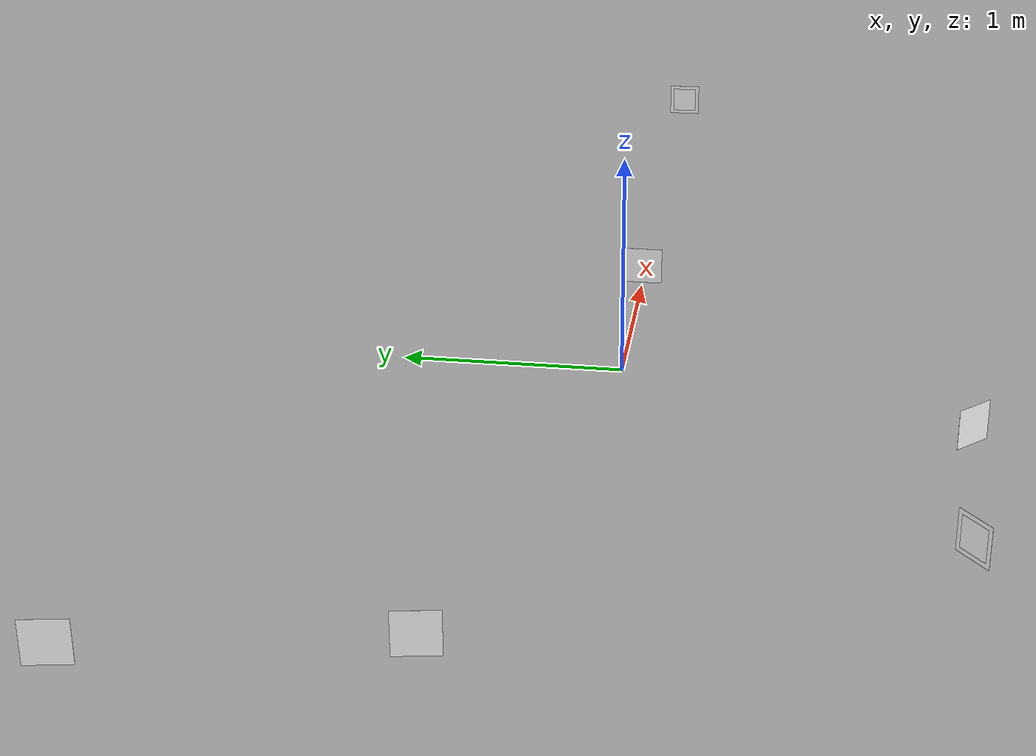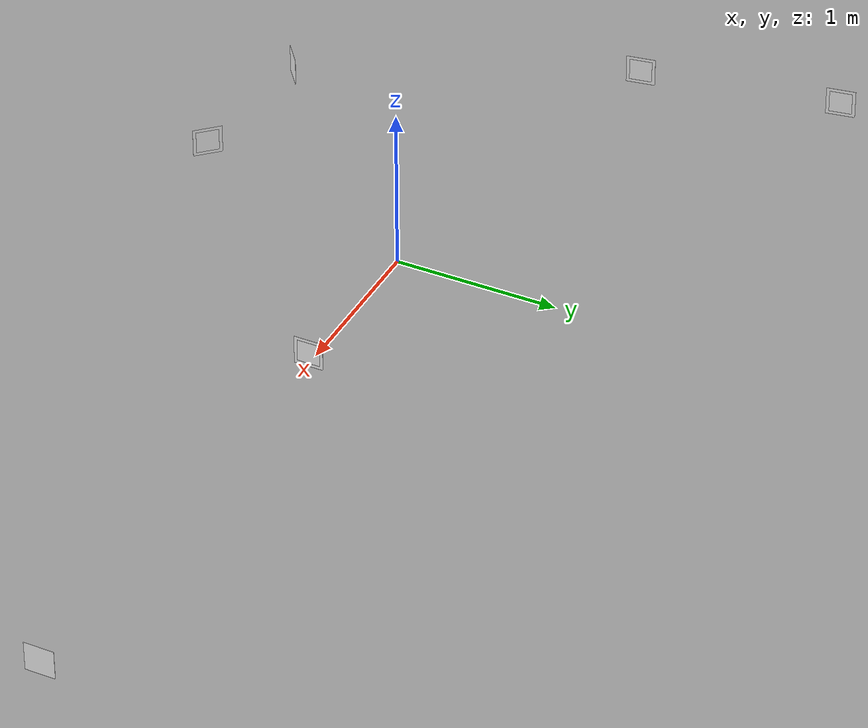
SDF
<sdf version="1.4">
 <world name="default">
  <physics name="1ms" type="ignored">
   <max_step_size>0.001</max_step_size>
   <real_time_factor>1.0</real_time_factor>
  </physics>
  <plugin filename="gz-sim-physics-system" name="gz::sim::systems::Physics"/>
  <plugin filename="gz-sim-user-commands-system" name="gz::sim::systems::UserCommands"/>
  <plugin filename="gz-sim-scene-broadcaster-system" name="gz::sim::systems::SceneBroadcaster"/>
  <plugin filename="gz-sim-sensors-system" name="gz::sim::systems::Sensors">
   <render_engine>ogre2</render_engine>
  </plugin>
  <scene><ambient>0.4 0.4 0.4 1</ambient><background>0.7 0.7 0.7 1</background><shadows>false</shadows></scene>
  <include>
   <name>aruco_marker_0</name>
   <uri>model://aruco_marker_0</uri>
   <pose>4 0 0.075 0 0 3.1416</pose>
  </include>
  <include>
   <name>aruco_marker_6</name>
   <uri>model://aruco_marker_6</uri>
   <pose>1.085 0 0.075 0 0 0</pose>
  </include>
  <include>
   <name>aruco_marker_7</name>
   <uri>model://aruco_marker_7</uri>
   <pose>-2.31996 0.4594 0.075 0 0 0.165</pose>
  </include>
  <include>
   <name>aruco_marker_8</name>
   <uri>model://aruco_marker_8</uri>
   <pose>-2.5379 1.6768 0.075 0 0 0.165</pose>
  </include>
  <include>
   <name>aruco_marker_9</name>
   <uri>model://aruco_marker_9</uri>
   <pose>-1.4336 -1.4504 0.075 0 0 2.2424</pose>
  </include>
  <include>
   <name>aruco_marker_10</name>
   <uri>model://aruco_marker_10</uri>
   <pose>-0.4928 -1.5174 0.075 0 0 0.7641</pose>
  </include>
 </world>
</sdf>

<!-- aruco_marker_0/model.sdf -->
<sdf version="1.5">
    <model name='aruco_marker_1'>
    <pose>0 0 0 0 0 0</pose>
    <static>true</static>
        <link name='link'>
            <inertial>
                <pose>0 0 0 0 -0 0</pose>
                <mass>0.281</mass>
                <inertia>
                    <ixx>0.0006167</ixx>
                    <ixy>0</ixy>
                    <ixz>0</ixz>
                    <iyy>0.0006167</iyy>
                    <iyz>0</iyz>
                    <izz>0.0006167</izz>
                </inertia>
            </inertial>
            <collision name="collision">
                <geometry>
                    <box>
                        <size>0.001 0.18 0.18</size>
                    </box>
                </geometry>
                <surface>
                    <contact>
                        <ode>
                            <max_vel>1</max_vel>
                            <min_depth>0.001</min_depth>
                            <kp>1000000</kp>
                            <kd>10</kd>
                        </ode>
                    </contact>
                    <friction>
                        <ode>
                            <mu>1</mu>
                            <mu2>1</mu2>
                        </ode>
                    </friction>
                </surface>
            </collision>

            <visual name='box_visual'>
                <cast_shadows>0</cast_shadows>
                    <geometry>
                        <box>
                            <size>0.001 0.18 0.18</size>
                        </box>
                    </geometry>
                <material>
                    <ambient>1 1 1 1</ambient>
                    <diffuse>1 1 1 1</diffuse>
                    <specular>1 1 1 1</specular>
                    <emissive>0.6 0.6 0.6 1</emissive>
                </material>
            </visual>

            <visual name='aruco_visual1'>
                <cast_shadows>0</cast_shadows>
                <pose>0.00065 0.0 0.0 1.5708 0.0 1.5708</pose>
                <geometry>
                    <plane>
                        <normal>0 0 1</normal>
                        <size>0.14 0.14</size>
                    </plane>
                </geometry>
                <material>
                    <pbr>
                        <metal>
                            <albedo_map>model://aruco_marker_0/materials/textures/marker0.png</albedo_map>
                            <normal_map>model://aruco_marker_0/materials/textures/marker0.png</normal_map>
                        </metal>
                    </pbr>
                    <ambient>1 1 1 1</ambient>
                    <diffuse>1 1 1 1</diffuse>
                    <specular>1 1 1 1</specular>
                    <emissive>0.0 0.0 0.0 1</emissive>
                </material>
            </visual>

        </link>
    </model>
</sdf>

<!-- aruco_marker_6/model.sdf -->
<sdf version="1.5">

    <model name='aruco_marker_7'>
        <pose>0 0 0 0 0 0</pose>
        <static>true</static>
        <link name='link'>
            <inertial>
                <pose>0 0 0 0 -0 0</pose>
                <mass>0.281</mass>
                <inertia>
                    <ixx>0.0006167</ixx>
                    <ixy>0</ixy>
                    <ixz>0</ixz>
                    <iyy>0.0006167</iyy>
                    <iyz>0</iyz>
                    <izz>0.0006167</izz>
                </inertia>
            </inertial>
            <collision name="collision">
                <geometry>
                    <box>
                        <size>0.001 0.18 0.18</size>
                    </box>
                </geometry>
                <surface>
                    <contact>
                        <ode>
                            <max_vel>1</max_vel>
                            <min_depth>0.001</min_depth>
                            <kp>1000000</kp>
                            <kd>10</kd>
                        </ode>
                    </contact>
                    <friction>
                        <ode>
                            <mu>1</mu>
                            <mu2>1</mu2>
                        </ode>
                    </friction>
                </surface>
            </collision>

            <visual name='box_visual'>
                <cast_shadows>0</cast_shadows>
                    <geometry>
                        <box>
                            <size>0.001 0.18 0.18</size>
                        </box>
                    </geometry>
                <material>
                    <ambient>1 1 1 1</ambient>
                    <diffuse>1 1 1 1</diffuse>
                    <specular>1 1 1 1</specular>
                    <emissive>0.6 0.6 0.6 1</emissive>
                </material>
            </visual>

            <visual name='aruco_visual1'>
                <cast_shadows>0</cast_shadows>
                <pose>0.00065 0.0 0.0 1.5708 0.0 1.5708</pose>
                <geometry>
                    <plane>
                        <normal>0 0 1</normal>
                        <size>0.14 0.14</size>
                    </plane>
                </geometry>
                <material>
                    <pbr>
                        <metal>
                            <albedo_map>model://aruco_marker_6/materials/textures/markers6.png</albedo_map>
                            <normal_map>model://aruco_marker_6/materials/textures/markers6.png</normal_map>
                        </metal>
                    </pbr>
                    <ambient>1 1 1 1</ambient>
                    <diffuse>1 1 1 1</diffuse>
                    <specular>1 1 1 1</specular>
                    <emissive>0.0 0.0 0.0 1</emissive>
                </material>
            </visual>

        </link>
    </model>
</sdf>

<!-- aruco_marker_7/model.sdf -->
<sdf version="1.5">

    <model name='aruco_marker_8'>
        <pose>0 0 0 0 0 0</pose>
        <static>true</static>
        <link name='link'>
            <inertial>
                <pose>0 0 0 0 -0 0</pose>
                <mass>0.281</mass>
                <inertia>
                    <ixx>0.0006167</ixx>
                    <ixy>0</ixy>
                    <ixz>0</ixz>
                    <iyy>0.0006167</iyy>
                    <iyz>0</iyz>
                    <izz>0.0006167</izz>
                </inertia>
            </inertial>
            <collision name="collision">
                <geometry>
                    <box>
                        <size>0.001 0.18 0.18</size>
                    </box>
                </geometry>
                <surface>
                    <contact>
                        <ode>
                            <max_vel>1</max_vel>
                            <min_depth>0.001</min_depth>
                            <kp>1000000</kp>
                            <kd>10</kd>
                        </ode>
                    </contact>
                    <friction>
                        <ode>
                            <mu>1</mu>
                            <mu2>1</mu2>
                        </ode>
                    </friction>
                </surface>
            </collision>

            <visual name='box_visual'>
                <cast_shadows>0</cast_shadows>
                    <geometry>
                        <box>
                            <size>0.001 0.18 0.18</size>
                        </box>
                    </geometry>
                <material>
                    <ambient>1 1 1 1</ambient>
                    <diffuse>1 1 1 1</diffuse>
                    <specular>1 1 1 1</specular>
                    <emissive>0.6 0.6 0.6 1</emissive>
                </material>
            </visual>

            <visual name='aruco_visual1'>
                <cast_shadows>0</cast_shadows>
                <pose>0.00065 0.0 0.0 1.5708 0.0 1.5708</pose>
                <geometry>
                    <plane>
                        <normal>0 0 1</normal>
                        <size>0.14 0.14</size>
                    </plane>
                </geometry>
                <material>
                    <pbr>
                        <metal>
                            <albedo_map>model://aruco_marker_7/materials/textures/markers7.png</albedo_map>
                            <normal_map>model://aruco_marker_7/materials/textures/markers7.png</normal_map>
                        </metal>
                    </pbr>
                    <ambient>1 1 1 1</ambient>
                    <diffuse>1 1 1 1</diffuse>
                    <specular>1 1 1 1</specular>
                    <emissive>0.0 0.0 0.0 1</emissive>
                </material>
            </visual>

        </link>
    </model>
</sdf>

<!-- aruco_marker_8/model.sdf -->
<sdf version="1.5">

    <model name='aruco_marker_9'>
        <pose>0 0 0 0 0 0</pose>
        <static>true</static>
        <link name='link'>
            <inertial>
                <pose>0 0 0 0 -0 0</pose>
                <mass>0.281</mass>
                <inertia>
                    <ixx>0.0006167</ixx>
                    <ixy>0</ixy>
                    <ixz>0</ixz>
                    <iyy>0.0006167</iyy>
                    <iyz>0</iyz>
                    <izz>0.0006167</izz>
                </inertia>
            </inertial>
            <collision name="collision">
                <geometry>
                    <box>
                        <size>0.001 0.18 0.18</size>
                    </box>
                </geometry>
                <surface>
                    <contact>
                        <ode>
                            <max_vel>1</max_vel>
                            <min_depth>0.001</min_depth>
                            <kp>1000000</kp>
                            <kd>10</kd>
                        </ode>
                    </contact>
                    <friction>
                        <ode>
                            <mu>1</mu>
                            <mu2>1</mu2>
                        </ode>
                    </friction>
                </surface>
            </collision>

            <visual name='box_visual'>
                <cast_shadows>0</cast_shadows>
                    <geometry>
                        <box>
                            <size>0.001 0.18 0.18</size>
                        </box>
                    </geometry>
                <material>
                    <ambient>1 1 1 1</ambient>
                    <diffuse>1 1 1 1</diffuse>
                    <specular>1 1 1 1</specular>
                    <emissive>0.6 0.6 0.6 1</emissive>
                </material>
            </visual>

            <visual name='aruco_visual1'>
                <cast_shadows>0</cast_shadows>
                <pose>0.00065 0.0 0.0 1.5708 0.0 1.5708</pose>
                <geometry>
                    <plane>
                        <normal>0 0 1</normal>
                        <size>0.14 0.14</size>
                    </plane>
                </geometry>
                <material>
                    <pbr>
                        <metal>
                            <albedo_map>model://aruco_marker_8/materials/textures/markers8.png</albedo_map>
                            <normal_map>model://aruco_marker_8/materials/textures/markers8.png</normal_map>
                        </metal>
                    </pbr>
                    <ambient>1 1 1 1</ambient>
                    <diffuse>1 1 1 1</diffuse>
                    <specular>1 1 1 1</specular>
                    <emissive>0.0 0.0 0.0 1</emissive>
                </material>
            </visual>

        </link>
    </model>
</sdf>

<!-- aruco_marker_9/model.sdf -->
<sdf version="1.5">

    <model name='aruco_marker_10'>
        <pose>0 0 0 0 0 0</pose>
        <static>true</static>
        <link name='link'>
            <inertial>
                <pose>0 0 0 0 -0 0</pose>
                <mass>0.281</mass>
                <inertia>
                    <ixx>0.0006167</ixx>
                    <ixy>0</ixy>
                    <ixz>0</ixz>
                    <iyy>0.0006167</iyy>
                    <iyz>0</iyz>
                    <izz>0.0006167</izz>
                </inertia>
            </inertial>
            <collision name="collision">
                <geometry>
                    <box>
                        <size>0.001 0.18 0.18</size>
                    </box>
                </geometry>
                <surface>
                    <contact>
                        <ode>
                            <max_vel>1</max_vel>
                            <min_depth>0.001</min_depth>
                            <kp>1000000</kp>
                            <kd>10</kd>
                        </ode>
                    </contact>
                    <friction>
                        <ode>
                            <mu>1</mu>
                            <mu2>1</mu2>
                        </ode>
                    </friction>
                </surface>
            </collision>

            <visual name='box_visual'>
                <cast_shadows>0</cast_shadows>
                    <geometry>
                        <box>
                            <size>0.001 0.18 0.18</size>
                        </box>
                    </geometry>
                <material>
                    <ambient>1 1 1 1</ambient>
                    <diffuse>1 1 1 1</diffuse>
                    <specular>1 1 1 1</specular>
                    <emissive>0.6 0.6 0.6 1</emissive>
                </material>
            </visual>

            <visual name='aruco_visual1'>
                <cast_shadows>0</cast_shadows>
                <pose>0.00065 0.0 0.0 1.5708 0.0 1.5708</pose>
                <geometry>
                    <plane>
                        <normal>0 0 1</normal>
                        <size>0.14 0.14</size>
                    </plane>
                </geometry>
                <material>
                    <pbr>
                        <metal>
                            <albedo_map>model://aruco_marker_9/materials/textures/marker9.png</albedo_map>
                            <normal_map>model://aruco_marker_9/materials/textures/marker9.png</normal_map>
                        </metal>
                    </pbr>
                    <ambient>1 1 1 1</ambient>
                    <diffuse>1 1 1 1</diffuse>
                    <specular>1 1 1 1</specular>
                    <emissive>0.0 0.0 0.0 1</emissive>
                </material>
            </visual>

        </link>
    </model>
</sdf>

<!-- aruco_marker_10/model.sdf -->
<sdf version="1.5">

    <model name='aruco_marker_11'>
        <pose>0 0 0 0 0 0</pose>
        <static>true</static>
        <link name='link'>
            <inertial>
                <pose>0 0 0 0 -0 0</pose>
                <mass>0.281</mass>
                <inertia>
                    <ixx>0.0006167</ixx>
                    <ixy>0</ixy>
                    <ixz>0</ixz>
                    <iyy>0.0006167</iyy>
                    <iyz>0</iyz>
                    <izz>0.0006167</izz>
                </inertia>
            </inertial>
            <collision name="collision">
                <geometry>
                    <box>
                        <size>0.001 0.18 0.18</size>
                    </box>
                </geometry>
                <surface>
                    <contact>
                        <ode>
                            <max_vel>1</max_vel>
                            <min_depth>0.001</min_depth>
                            <kp>1000000</kp>
                            <kd>10</kd>
                        </ode>
                    </contact>
                    <friction>
                        <ode>
                            <mu>1</mu>
                            <mu2>1</mu2>
                        </ode>
                    </friction>
                </surface>
            </collision>

            <visual name='box_visual'>
                <cast_shadows>0</cast_shadows>
                    <geometry>
                        <box>
                            <size>0.001 0.18 0.18</size>
                        </box>
                    </geometry>
                <material>
                    <ambient>1 1 1 1</ambient>
                    <diffuse>1 1 1 1</diffuse>
                    <specular>1 1 1 1</specular>
                    <emissive>0.6 0.6 0.6 1</emissive>
                </material>
            </visual>

            <visual name='aruco_visual1'>
                <cast_shadows>0</cast_shadows>
                <pose>0.00065 0.0 0.0 1.5708 0.0 1.5708</pose>
                <geometry>
                    <plane>
                        <normal>0 0 1</normal>
                        <size>0.14 0.14</size>
                    </plane>
                </geometry>
                <material>
                    <pbr>
                        <metal>
                            <albedo_map>model://aruco_marker_10/materials/textures/marker10.png</albedo_map>
                            <normal_map>model://aruco_marker_10/materials/textures/marker10.png</normal_map>
                        </metal>
                    </pbr>
                    <ambient>1 1 1 1</ambient>
                    <diffuse>1 1 1 1</diffuse>
                    <specular>1 1 1 1</specular>
                    <emissive>0.0 0.0 0.0 1</emissive>
                </material>
            </visual>

        </link>
    </model>
</sdf>
